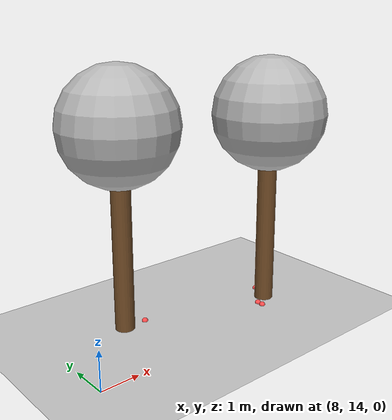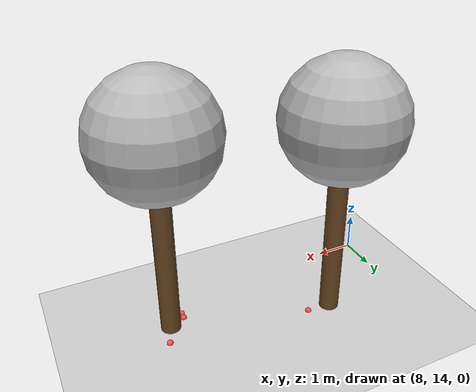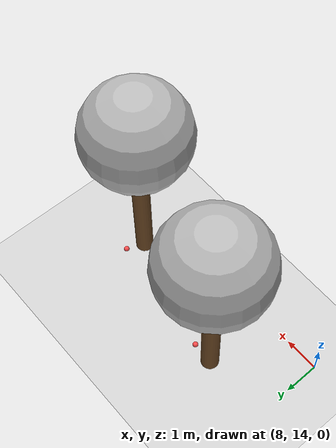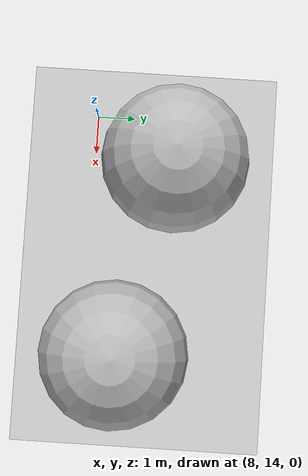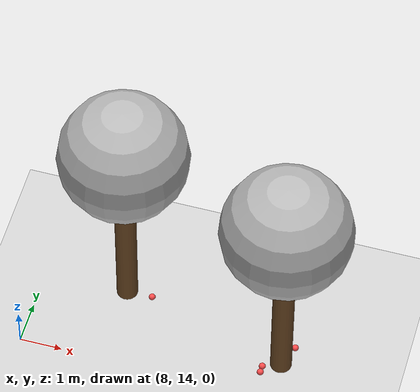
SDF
<sdf version="1.7">
 <world name="default">
  <model name="ground_plane">
   <static>1</static>
   <link name="link">
    <collision name="collision">
     <geometry><plane><normal>0 0 1</normal><size>100 100</size></plane></geometry>
     <surface>
      <contact><collide_bitmask>65535</collide_bitmask></contact>
      <friction><ode><mu>100</mu><mu2>50</mu2></ode></friction>
     </surface>
    </collision>
    <visual name="visual">
     <cast_shadows>0</cast_shadows>
     <geometry><plane><normal>0 0 1</normal><size>100 100</size></plane></geometry>
     <material>
      <script><uri>file://media/materials/scripts/gazebo.material</uri><name>Gazebo/Grey</name></script>
     </material>
    </visual>
   </link>
  </model>
  <model name="tree_simple_57">
   <static>1</static>
   <link name="link">
    <pose>0 0 0.1 0 -0 0</pose>
    <inertial>
     <mass>666</mass>
     <inertia>
      <ixx>0.0861167</ixx>
      <ixy>0</ixy>
      <ixz>0</ixz>
      <iyy>0.0861167</iyy>
      <iyz>0</iyz>
      <izz>0.0861167</izz>
     </inertia>
    </inertial>
    <collision name="collision_trunk">
     <pose>0 0 2 0 -0 0</pose>
     <geometry><cylinder><radius>0.25</radius><length>4</length></cylinder></geometry>
     <surface>
      <contact>
       <poissons_ratio>0.347</poissons_ratio>
       <elastic_modulus>8.8e+09</elastic_modulus>
       <ode><kp>100000</kp><kd>100</kd><max_vel>100</max_vel><min_depth>0.001</min_depth></ode>
      </contact>
      <friction>
       <torsional>
        <coefficient>1</coefficient>
        <use_patch_radius>0</use_patch_radius>
        <surface_radius>0.01</surface_radius>
       </torsional>
      </friction>
     </surface>
    </collision>
    <collision name="collision_treetop">
     <pose>0 0 5.2 0 -0 0</pose>
     <geometry><sphere><radius>1.5</radius></sphere></geometry>
     <surface>
      <contact>
       <poissons_ratio>0.347</poissons_ratio>
       <elastic_modulus>8.8e+09</elastic_modulus>
       <ode><kp>100000</kp><kd>100</kd><max_vel>100</max_vel><min_depth>0.001</min_depth></ode>
      </contact>
      <friction>
       <torsional>
        <coefficient>1</coefficient>
        <use_patch_radius>0</use_patch_radius>
        <surface_radius>0.01</surface_radius>
       </torsional>
      </friction>
     </surface>
    </collision>
    <visual name="trunk">
     <pose>0 0 2 0 -0 0</pose>
     <geometry><cylinder><radius>0.25</radius><length>4</length></cylinder></geometry>
     <material>
      <script>
       <uri>model://tree_simple/scripts</uri>
       <uri>model://tree_simple/materials/textures</uri>
       <name>TreeSimple/Trunk</name>
      </script>
     </material>
    </visual>
    <visual name="treetop">
     <pose>0 0 5.2 0 -0 0</pose>
     <geometry><sphere><radius>1.5</radius></sphere></geometry>
     <material>
      <script>
       <uri>model://tree_simple/scripts</uri>
       <uri>model://tree_simple/materials/textures</uri>
       <name>TreeSimple/Treetop</name>
      </script>
     </material>
    </visual>
   </link>
   <pose>10 16 -0.1 0 -0 0</pose>
  </model>
  <model name="tree_simple_60">
   <static>1</static>
   <link name="link">
    <pose>0 0 0.1 0 -0 0</pose>
    <inertial>
     <mass>666</mass>
     <inertia>
      <ixx>0.0861167</ixx>
      <ixy>0</ixy>
      <ixz>0</ixz>
      <iyy>0.0861167</iyy>
      <iyz>0</iyz>
      <izz>0.0861167</izz>
     </inertia>
    </inertial>
    <collision name="collision_trunk">
     <pose>0 0 2 0 -0 0</pose>
     <geometry><cylinder><radius>0.25</radius><length>4</length></cylinder></geometry>
     <surface>
      <contact>
       <poissons_ratio>0.347</poissons_ratio>
       <elastic_modulus>8.8e+09</elastic_modulus>
       <ode><kp>100000</kp><kd>100</kd><max_vel>100</max_vel><min_depth>0.001</min_depth></ode>
      </contact>
      <friction>
       <torsional>
        <coefficient>1</coefficient>
        <use_patch_radius>0</use_patch_radius>
        <surface_radius>0.01</surface_radius>
       </torsional>
      </friction>
     </surface>
    </collision>
    <collision name="collision_treetop">
     <pose>0 0 5.2 0 -0 0</pose>
     <geometry><sphere><radius>1.5</radius></sphere></geometry>
     <surface>
      <contact>
       <poissons_ratio>0.347</poissons_ratio>
       <elastic_modulus>8.8e+09</elastic_modulus>
       <ode><kp>100000</kp><kd>100</kd><max_vel>100</max_vel><min_depth>0.001</min_depth></ode>
      </contact>
      <friction>
       <torsional>
        <coefficient>1</coefficient>
        <use_patch_radius>0</use_patch_radius>
        <surface_radius>0.01</surface_radius>
       </torsional>
      </friction>
     </surface>
    </collision>
    <visual name="trunk">
     <pose>0 0 2 0 -0 0</pose>
     <geometry><cylinder><radius>0.25</radius><length>4</length></cylinder></geometry>
     <material>
      <script>
       <uri>model://tree_simple/scripts</uri>
       <uri>model://tree_simple/materials/textures</uri>
       <name>TreeSimple/Trunk</name>
      </script>
     </material>
    </visual>
    <visual name="treetop">
     <pose>0 0 5.2 0 -0 0</pose>
     <geometry><sphere><radius>1.5</radius></sphere></geometry>
     <material>
      <script>
       <uri>model://tree_simple/scripts</uri>
       <uri>model://tree_simple/materials/textures</uri>
       <name>TreeSimple/Treetop</name>
      </script>
     </material>
    </visual>
   </link>
   <pose>14 15 -0.1 0 -0 0</pose>
  </model>
  <model name="seed_red_237">
   <link name="link">
    <inertial>
     <mass>1</mass>
     <inertia><ixx>0.1</ixx><ixy>0</ixy><ixz>0</ixz><iyy>0.1</iyy><iyz>0</iyz><izz>0.1</izz></inertia>
    </inertial>
    <visual name="visual">
     <geometry><sphere><radius>0.08</radius></sphere></geometry>
     <material>
      <script><name>Gazebo/Grey</name><uri>file://media/materials/scripts/gazebo.material</uri></script>
      <shader type="pixel"><normal_map>__default__</normal_map></shader>
      <ambient>1 0.3 0.3 1</ambient>
      <diffuse>0.7 0.7 0.7 1</diffuse>
      <specular>0.01 0.01 0.01 1</specular>
      <emissive>0 0 0 1</emissive>
     </material>
    </visual>
    <collision name="collision">
     <geometry><sphere><radius>0.0005</radius></sphere></geometry>
     <surface>
      <friction>
       <ode><mu>1</mu><mu2>1</mu2><fdir1>0 0 0</fdir1><slip1>0</slip1><slip2>0</slip2></ode>
       <torsional>
        <coefficient>1</coefficient>
        <patch_radius>0</patch_radius>
        <surface_radius>0</surface_radius>
        <use_patch_radius>1</use_patch_radius>
        <ode><slip>0</slip></ode>
       </torsional>
      </friction>
      <bounce><restitution_coefficient>0</restitution_coefficient><threshold>1e+06</threshold></bounce>
      <contact>
       <collide_without_contact>0</collide_without_contact>
       <collide_without_contact_bitmask>1</collide_without_contact_bitmask>
       <collide_bitmask>1</collide_bitmask>
       <ode>
        <soft_cfm>0</soft_cfm>
        <soft_erp>0.2</soft_erp>
        <kp>1e+13</kp>
        <kd>1</kd>
        <max_vel>0.01</max_vel>
        <min_depth>0</min_depth>
       </ode>
       <bullet>
        <split_impulse>1</split_impulse>
        <split_impulse_penetration_threshold>-0.01</split_impulse_penetration_threshold>
        <soft_cfm>0</soft_cfm>
        <soft_erp>0.2</soft_erp>
        <kp>1e+13</kp>
        <kd>1</kd>
       </bullet>
      </contact>
     </surface>
    </collision>
   </link>
   <static>0</static>
   <pose>10.6094 15.9866 0.0005 0 -0 0</pose>
  </model>
  <model name="seed_red_253">
   <link name="link">
    <inertial>
     <mass>1</mass>
     <inertia><ixx>0.1</ixx><ixy>0</ixy><ixz>0</ixz><iyy>0.1</iyy><iyz>0</iyz><izz>0.1</izz></inertia>
    </inertial>
    <visual name="visual">
     <geometry><sphere><radius>0.08</radius></sphere></geometry>
     <material>
      <script><name>Gazebo/Grey</name><uri>file://media/materials/scripts/gazebo.material</uri></script>
      <shader type="pixel"><normal_map>__default__</normal_map></shader>
      <ambient>1 0.3 0.3 1</ambient>
      <diffuse>0.7 0.7 0.7 1</diffuse>
      <specular>0.01 0.01 0.01 1</specular>
      <emissive>0 0 0 1</emissive>
     </material>
    </visual>
    <collision name="collision">
     <geometry><sphere><radius>0.0005</radius></sphere></geometry>
     <surface>
      <friction>
       <ode><mu>1</mu><mu2>1</mu2><fdir1>0 0 0</fdir1><slip1>0</slip1><slip2>0</slip2></ode>
       <torsional>
        <coefficient>1</coefficient>
        <patch_radius>0</patch_radius>
        <surface_radius>0</surface_radius>
        <use_patch_radius>1</use_patch_radius>
        <ode><slip>0</slip></ode>
       </torsional>
      </friction>
      <bounce><restitution_coefficient>0</restitution_coefficient><threshold>1e+06</threshold></bounce>
      <contact>
       <collide_without_contact>0</collide_without_contact>
       <collide_without_contact_bitmask>1</collide_without_contact_bitmask>
       <collide_bitmask>1</collide_bitmask>
       <ode>
        <soft_cfm>0</soft_cfm>
        <soft_erp>0.2</soft_erp>
        <kp>1e+13</kp>
        <kd>1</kd>
        <max_vel>0.01</max_vel>
        <min_depth>0</min_depth>
       </ode>
       <bullet>
        <split_impulse>1</split_impulse>
        <split_impulse_penetration_threshold>-0.01</split_impulse_penetration_threshold>
        <soft_cfm>0</soft_cfm>
        <soft_erp>0.2</soft_erp>
        <kp>1e+13</kp>
        <kd>1</kd>
       </bullet>
      </contact>
     </surface>
    </collision>
   </link>
   <static>0</static>
   <pose>14.2085 15.5151 0.0005 0 -0 0</pose>
  </model>
  <model name="seed_red_254">
   <link name="link">
    <inertial>
     <mass>1</mass>
     <inertia><ixx>0.1</ixx><ixy>0</ixy><ixz>0</ixz><iyy>0.1</iyy><iyz>0</iyz><izz>0.1</izz></inertia>
    </inertial>
    <visual name="visual">
     <geometry><sphere><radius>0.08</radius></sphere></geometry>
     <material>
      <script><name>Gazebo/Grey</name><uri>file://media/materials/scripts/gazebo.material</uri></script>
      <shader type="pixel"><normal_map>__default__</normal_map></shader>
      <ambient>1 0.3 0.3 1</ambient>
      <diffuse>0.7 0.7 0.7 1</diffuse>
      <specular>0.01 0.01 0.01 1</specular>
      <emissive>0 0 0 1</emissive>
     </material>
    </visual>
    <collision name="collision">
     <geometry><sphere><radius>0.0005</radius></sphere></geometry>
     <surface>
      <friction>
       <ode><mu>1</mu><mu2>1</mu2><fdir1>0 0 0</fdir1><slip1>0</slip1><slip2>0</slip2></ode>
       <torsional>
        <coefficient>1</coefficient>
        <patch_radius>0</patch_radius>
        <surface_radius>0</surface_radius>
        <use_patch_radius>1</use_patch_radius>
        <ode><slip>0</slip></ode>
       </torsional>
      </friction>
      <bounce><restitution_coefficient>0</restitution_coefficient><threshold>1e+06</threshold></bounce>
      <contact>
       <collide_without_contact>0</collide_without_contact>
       <collide_without_contact_bitmask>1</collide_without_contact_bitmask>
       <collide_bitmask>1</collide_bitmask>
       <ode>
        <soft_cfm>0</soft_cfm>
        <soft_erp>0.2</soft_erp>
        <kp>1e+13</kp>
        <kd>1</kd>
        <max_vel>0.01</max_vel>
        <min_depth>0</min_depth>
       </ode>
       <bullet>
        <split_impulse>1</split_impulse>
        <split_impulse_penetration_threshold>-0.01</split_impulse_penetration_threshold>
        <soft_cfm>0</soft_cfm>
        <soft_erp>0.2</soft_erp>
        <kp>1e+13</kp>
        <kd>1</kd>
       </bullet>
      </contact>
     </surface>
    </collision>
   </link>
   <static>0</static>
   <pose>13.6 14.6501 0.0005 0 -0 0</pose>
  </model>
  <model name="seed_red_255">
   <link name="link">
    <inertial>
     <mass>1</mass>
     <inertia><ixx>0.1</ixx><ixy>0</ixy><ixz>0</ixz><iyy>0.1</iyy><iyz>0</iyz><izz>0.1</izz></inertia>
    </inertial>
    <visual name="visual">
     <geometry><sphere><radius>0.08</radius></sphere></geometry>
     <material>
      <script><name>Gazebo/Grey</name><uri>file://media/materials/scripts/gazebo.material</uri></script>
      <shader type="pixel"><normal_map>__default__</normal_map></shader>
      <ambient>1 0.3 0.3 1</ambient>
      <diffuse>0.7 0.7 0.7 1</diffuse>
      <specular>0.01 0.01 0.01 1</specular>
      <emissive>0 0 0 1</emissive>
     </material>
    </visual>
    <collision name="collision">
     <geometry><sphere><radius>0.0005</radius></sphere></geometry>
     <surface>
      <friction>
       <ode><mu>1</mu><mu2>1</mu2><fdir1>0 0 0</fdir1><slip1>0</slip1><slip2>0</slip2></ode>
       <torsional>
        <coefficient>1</coefficient>
        <patch_radius>0</patch_radius>
        <surface_radius>0</surface_radius>
        <use_patch_radius>1</use_patch_radius>
        <ode><slip>0</slip></ode>
       </torsional>
      </friction>
      <bounce><restitution_coefficient>0</restitution_coefficient><threshold>1e+06</threshold></bounce>
      <contact>
       <collide_without_contact>0</collide_without_contact>
       <collide_without_contact_bitmask>1</collide_without_contact_bitmask>
       <collide_bitmask>1</collide_bitmask>
       <ode>
        <soft_cfm>0</soft_cfm>
        <soft_erp>0.2</soft_erp>
        <kp>1e+13</kp>
        <kd>1</kd>
        <max_vel>0.01</max_vel>
        <min_depth>0</min_depth>
       </ode>
       <bullet>
        <split_impulse>1</split_impulse>
        <split_impulse_penetration_threshold>-0.01</split_impulse_penetration_threshold>
        <soft_cfm>0</soft_cfm>
        <soft_erp>0.2</soft_erp>
        <kp>1e+13</kp>
        <kd>1</kd>
       </bullet>
      </contact>
     </surface>
    </collision>
   </link>
   <static>0</static>
   <pose>13.6027 14.8171 0.0005 0 -0 0</pose>
  </model>
 </world>
</sdf>
